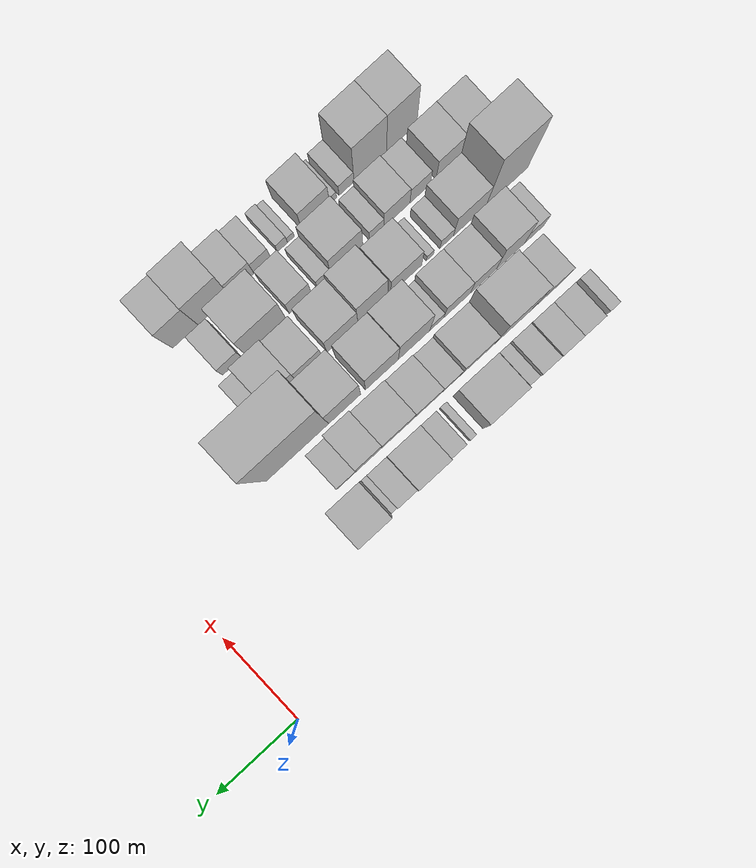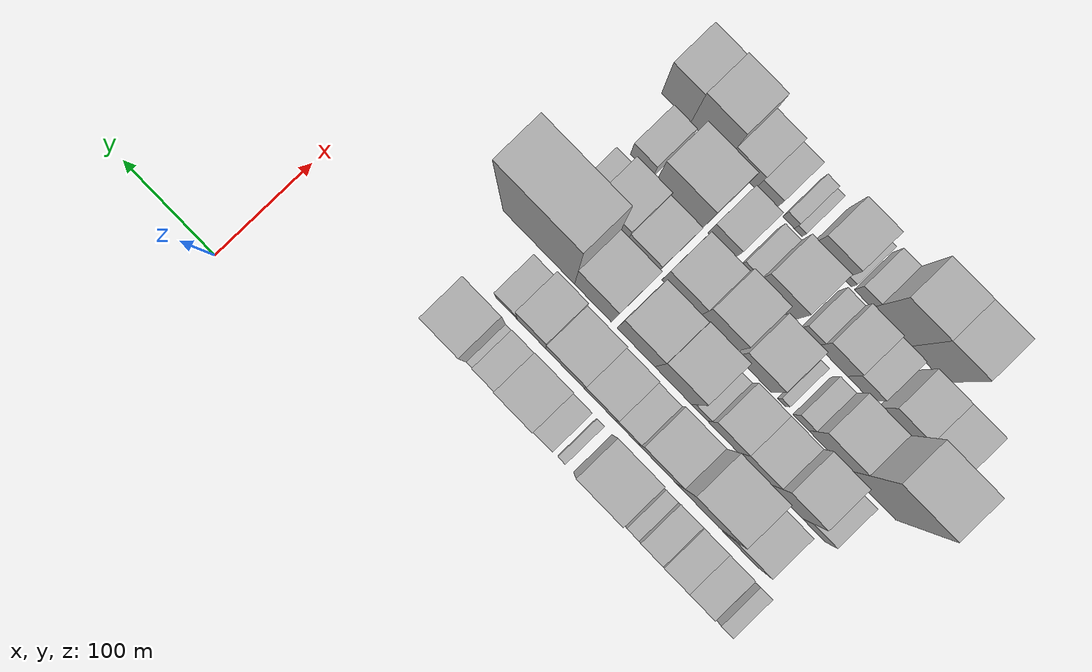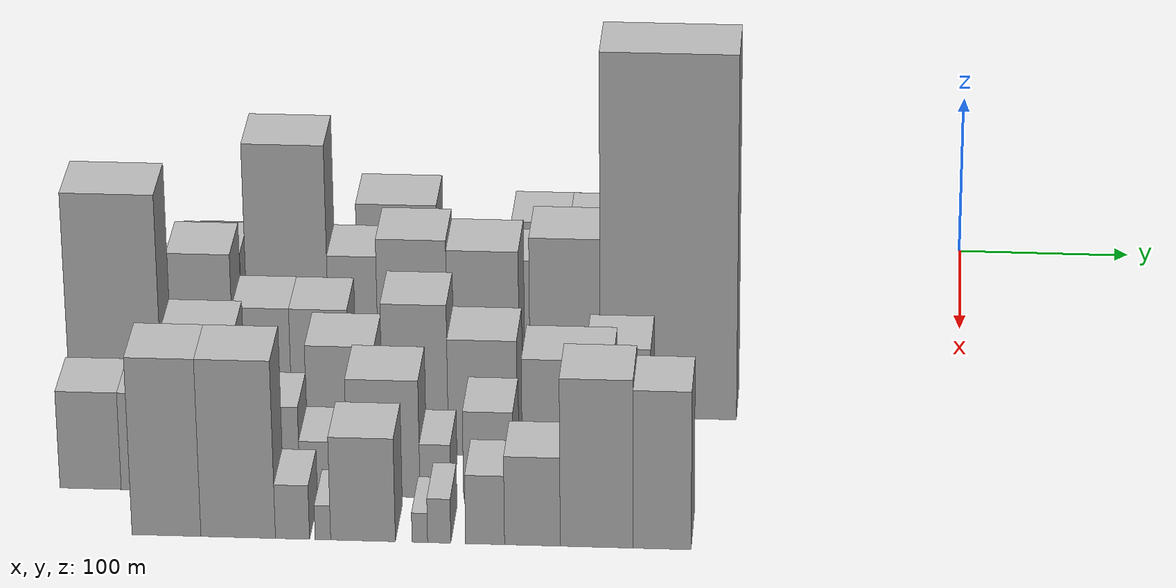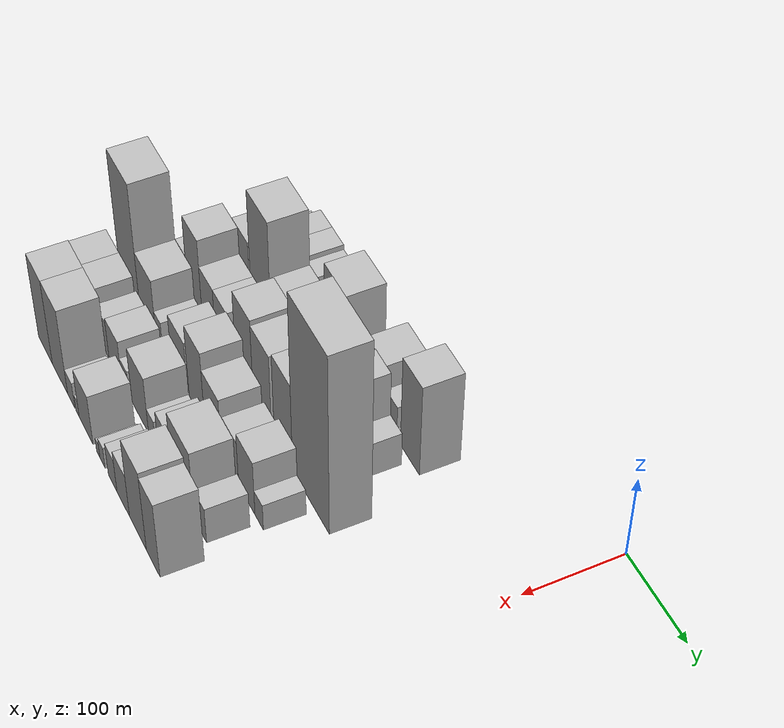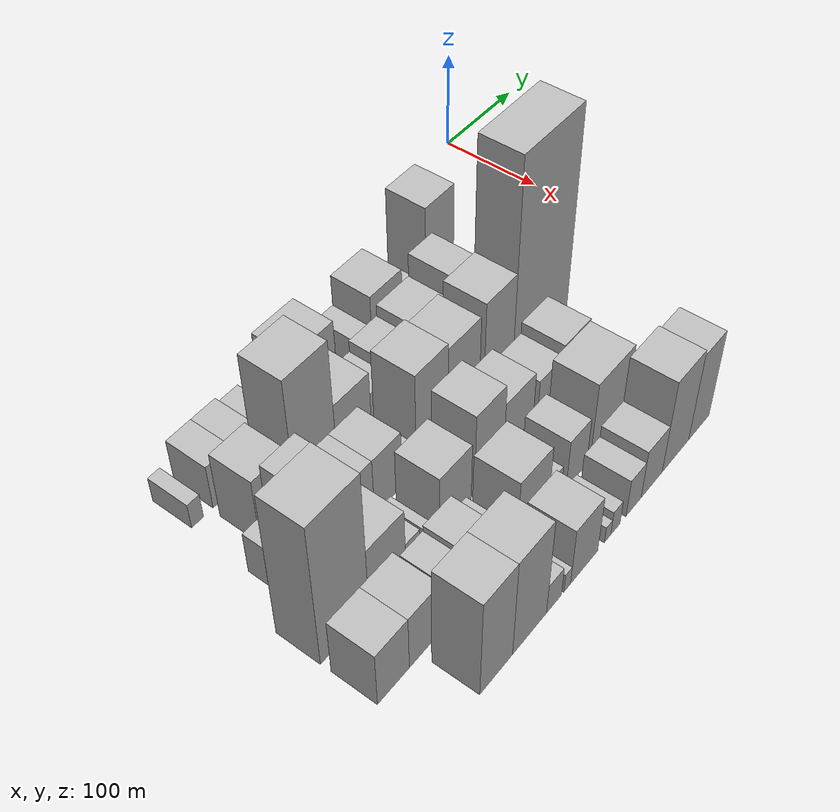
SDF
<sdf version="1.6">
 <world name="default">
  <model name="building_9">
   <static>1</static>
   <pose>100.0000 -460.1134 0 0.000000 0.000000 0.000000</pose>
   <link name="link">
    <pose>0 0 13.50 0 0 0</pose>
    <collision name="collision"><geometry><box><size>40.0000 12.3579 27.0000</size></box></geometry></collision>
    <visual name="visual">
     <cast_shadows>0</cast_shadows>
     <geometry><box><size>40.0000 12.3579 27.0000</size></box></geometry>
     <material>
      <script>
       <uri>model://HANNAS_wall/materials/scripts</uri>
       <uri>model://HANNAS_wall/materials/textures</uri>
       <name>vrc/HANNAS_wall</name>
      </script>
     </material>
    </visual>
   </link>
  </model>
  <model name="building_10">
   <static>1</static>
   <pose>100.0000 -431.0310 0 0.000000 0.000000 0.000000</pose>
   <link name="link">
    <pose>0 0 24.00 0 0 0</pose>
    <collision name="collision"><geometry><box><size>40.0000 25.8069 48.0000</size></box></geometry></collision>
    <visual name="visual">
     <cast_shadows>0</cast_shadows>
     <geometry><box><size>40.0000 25.8069 48.0000</size></box></geometry>
     <material>
      <script>
       <uri>model://HANNAS_wall/materials/scripts</uri>
       <uri>model://HANNAS_wall/materials/textures</uri>
       <name>vrc/HANNAS_wall</name>
      </script>
     </material>
    </visual>
   </link>
  </model>
  <model name="building_11">
   <static>1</static>
   <pose>100.0000 -405.2154 0 0.000000 0.000000 0.000000</pose>
   <link name="link">
    <pose>0 0 24.00 0 0 0</pose>
    <collision name="collision"><geometry><box><size>40.0000 25.8243 48.0000</size></box></geometry></collision>
    <visual name="visual">
     <cast_shadows>0</cast_shadows>
     <geometry><box><size>40.0000 25.8243 48.0000</size></box></geometry>
     <material>
      <script>
       <uri>model://HANNAS_wall/materials/scripts</uri>
       <uri>model://HANNAS_wall/materials/textures</uri>
       <name>vrc/HANNAS_wall</name>
      </script>
     </material>
    </visual>
   </link>
  </model>
  <model name="building_12">
   <static>1</static>
   <pose>100.0000 -380.7069 0 0.000000 0.000000 0.000000</pose>
   <link name="link">
    <pose>0 0 21.00 0 0 0</pose>
    <collision name="collision"><geometry><box><size>40.0000 23.1926 42.0000</size></box></geometry></collision>
    <visual name="visual">
     <cast_shadows>0</cast_shadows>
     <geometry><box><size>40.0000 23.1926 42.0000</size></box></geometry>
     <material>
      <script>
       <uri>model://HANNAS_wall/materials/scripts</uri>
       <uri>model://HANNAS_wall/materials/textures</uri>
       <name>vrc/HANNAS_wall</name>
      </script>
     </material>
    </visual>
   </link>
  </model>
  <model name="building_13">
   <static>1</static>
   <pose>100.0000 -362.7196 0 0.000000 0.000000 0.000000</pose>
   <link name="link">
    <pose>0 0 13.50 0 0 0</pose>
    <collision name="collision"><geometry><box><size>40.0000 12.7820 27.0000</size></box></geometry></collision>
    <visual name="visual">
     <cast_shadows>0</cast_shadows>
     <geometry><box><size>40.0000 12.7820 27.0000</size></box></geometry>
     <material>
      <script>
       <uri>model://HANNAS_wall/materials/scripts</uri>
       <uri>model://HANNAS_wall/materials/textures</uri>
       <name>vrc/HANNAS_wall</name>
      </script>
     </material>
    </visual>
   </link>
  </model>
  <model name="building_14">
   <static>1</static>
   <pose>100.0000 -325.0952 0 0.000000 0.000000 0.000000</pose>
   <link name="link">
    <pose>0 0 40.50 0 0 0</pose>
    <collision name="collision"><geometry><box><size>40.0000 46.4668 81.0000</size></box></geometry></collision>
    <visual name="visual">
     <cast_shadows>0</cast_shadows>
     <geometry><box><size>40.0000 46.4668 81.0000</size></box></geometry>
     <material>
      <script>
       <uri>model://HANNAS_wall/materials/scripts</uri>
       <uri>model://HANNAS_wall/materials/textures</uri>
       <name>vrc/HANNAS_wall</name>
      </script>
     </material>
    </visual>
   </link>
  </model>
  <model name="building_15">
   <static>1</static>
   <pose>100.0000 -288.9566 0 0.000000 0.000000 0.000000</pose>
   <link name="link">
    <pose>0 0 9.00 0 0 0</pose>
    <collision name="collision"><geometry><box><size>40.0000 7.8104 18.0000</size></box></geometry></collision>
    <visual name="visual">
     <cast_shadows>0</cast_shadows>
     <geometry><box><size>40.0000 7.8104 18.0000</size></box></geometry>
     <material>
      <script>
       <uri>model://HANNAS_wall/materials/scripts</uri>
       <uri>model://HANNAS_wall/materials/textures</uri>
       <name>vrc/HANNAS_wall</name>
      </script>
     </material>
    </visual>
   </link>
  </model>
  <model name="building_16">
   <static>1</static>
   <pose>100.0000 -268.9484 0 0.000000 0.000000 0.000000</pose>
   <link name="link">
    <pose>0 0 19.50 0 0 0</pose>
    <collision name="collision"><geometry><box><size>40.0000 20.2061 39.0000</size></box></geometry></collision>
    <visual name="visual">
     <cast_shadows>0</cast_shadows>
     <geometry><box><size>40.0000 20.2061 39.0000</size></box></geometry>
     <material>
      <script>
       <uri>model://HANNAS_wall/materials/scripts</uri>
       <uri>model://HANNAS_wall/materials/textures</uri>
       <name>vrc/HANNAS_wall</name>
      </script>
     </material>
    </visual>
   </link>
  </model>
  <model name="building_17">
   <static>1</static>
   <pose>100.0000 -239.3086 0 0.000000 0.000000 0.000000</pose>
   <link name="link">
    <pose>0 0 36.00 0 0 0</pose>
    <collision name="collision"><geometry><box><size>40.0000 39.0734 72.0000</size></box></geometry></collision>
    <visual name="visual">
     <cast_shadows>0</cast_shadows>
     <geometry><box><size>40.0000 39.0734 72.0000</size></box></geometry>
     <material>
      <script>
       <uri>model://HANNAS_wall/materials/scripts</uri>
       <uri>model://HANNAS_wall/materials/textures</uri>
       <name>vrc/HANNAS_wall</name>
      </script>
     </material>
    </visual>
   </link>
  </model>
  <model name="building_18">
   <static>1</static>
   <pose>100.0000 -207.8517 0 0.000000 0.000000 0.000000</pose>
   <link name="link">
    <pose>0 0 21.00 0 0 0</pose>
    <collision name="collision"><geometry><box><size>40.0000 23.8405 42.0000</size></box></geometry></collision>
    <visual name="visual">
     <cast_shadows>0</cast_shadows>
     <geometry><box><size>40.0000 23.8405 42.0000</size></box></geometry>
     <material>
      <script>
       <uri>model://HANNAS_wall/materials/scripts</uri>
       <uri>model://HANNAS_wall/materials/textures</uri>
       <name>vrc/HANNAS_wall</name>
      </script>
     </material>
    </visual>
   </link>
  </model>
  <model name="building_19">
   <static>1</static>
   <pose>100.0000 -192.2362 0 0.000000 0.000000 0.000000</pose>
   <link name="link">
    <pose>0 0 7.50 0 0 0</pose>
    <collision name="collision"><geometry><box><size>40.0000 7.3903 15.0000</size></box></geometry></collision>
    <visual name="visual">
     <cast_shadows>0</cast_shadows>
     <geometry><box><size>40.0000 7.3903 15.0000</size></box></geometry>
     <material>
      <script>
       <uri>model://HANNAS_wall/materials/scripts</uri>
       <uri>model://HANNAS_wall/materials/textures</uri>
       <name>vrc/HANNAS_wall</name>
      </script>
     </material>
    </visual>
   </link>
  </model>
  <model name="building_20">
   <static>1</static>
   <pose>100.0000 -169.7350 0 0.000000 0.000000 0.000000</pose>
   <link name="link">
    <pose>0 0 57.00 0 0 0</pose>
    <collision name="collision"><geometry><box><size>40.0000 37.6122 114.0000</size></box></geometry></collision>
    <visual name="visual">
     <cast_shadows>0</cast_shadows>
     <geometry><box><size>40.0000 37.6122 114.0000</size></box></geometry>
     <material>
      <script>
       <uri>model://HANNAS_wall/materials/scripts</uri>
       <uri>model://HANNAS_wall/materials/textures</uri>
       <name>vrc/HANNAS_wall</name>
      </script>
     </material>
    </visual>
   </link>
  </model>
  <model name="building_70">
   <static>1</static>
   <pose>149.0000 -427.7737 0 0.000000 0.000000 0.000000</pose>
   <link name="link">
    <pose>0 0 36.00 0 0 0</pose>
    <collision name="collision"><geometry><box><size>40.0000 36.5717 72.0000</size></box></geometry></collision>
    <visual name="visual">
     <cast_shadows>0</cast_shadows>
     <geometry><box><size>40.0000 36.5717 72.0000</size></box></geometry>
     <material>
      <script>
       <uri>model://HANNAS_wall/materials/scripts</uri>
       <uri>model://HANNAS_wall/materials/textures</uri>
       <name>vrc/HANNAS_wall</name>
      </script>
     </material>
    </visual>
   </link>
  </model>
  <model name="building_71">
   <static>1</static>
   <pose>149.0000 -383.2356 0 0.000000 0.000000 0.000000</pose>
   <link name="link">
    <pose>0 0 70.50 0 0 0</pose>
    <collision name="collision"><geometry><box><size>40.0000 46.5044 141.0000</size></box></geometry></collision>
    <visual name="visual">
     <cast_shadows>0</cast_shadows>
     <geometry><box><size>40.0000 46.5044 141.0000</size></box></geometry>
     <material>
      <script>
       <uri>model://HANNAS_wall/materials/scripts</uri>
       <uri>model://HANNAS_wall/materials/textures</uri>
       <name>vrc/HANNAS_wall</name>
      </script>
     </material>
    </visual>
   </link>
  </model>
  <model name="building_72">
   <static>1</static>
   <pose>149.0000 -339.8218 0 0.000000 0.000000 0.000000</pose>
   <link name="link">
    <pose>0 0 36.00 0 0 0</pose>
    <collision name="collision"><geometry><box><size>40.0000 40.3234 72.0000</size></box></geometry></collision>
    <visual name="visual">
     <cast_shadows>0</cast_shadows>
     <geometry><box><size>40.0000 40.3234 72.0000</size></box></geometry>
     <material>
      <script>
       <uri>model://HANNAS_wall/materials/scripts</uri>
       <uri>model://HANNAS_wall/materials/textures</uri>
       <name>vrc/HANNAS_wall</name>
      </script>
     </material>
    </visual>
   </link>
  </model>
  <model name="building_73">
   <static>1</static>
   <pose>149.0000 -307.6276 0 0.000000 0.000000 0.000000</pose>
   <link name="link">
    <pose>0 0 24.00 0 0 0</pose>
    <collision name="collision"><geometry><box><size>40.0000 24.0650 48.0000</size></box></geometry></collision>
    <visual name="visual">
     <cast_shadows>0</cast_shadows>
     <geometry><box><size>40.0000 24.0650 48.0000</size></box></geometry>
     <material>
      <script>
       <uri>model://HANNAS_wall/materials/scripts</uri>
       <uri>model://HANNAS_wall/materials/textures</uri>
       <name>vrc/HANNAS_wall</name>
      </script>
     </material>
    </visual>
   </link>
  </model>
  <model name="building_74">
   <static>1</static>
   <pose>149.0000 -278.8777 0 0.000000 0.000000 0.000000</pose>
   <link name="link">
    <pose>0 0 30.00 0 0 0</pose>
    <collision name="collision"><geometry><box><size>40.0000 33.4348 60.0000</size></box></geometry></collision>
    <visual name="visual">
     <cast_shadows>0</cast_shadows>
     <geometry><box><size>40.0000 33.4348 60.0000</size></box></geometry>
     <material>
      <script>
       <uri>model://HANNAS_wall/materials/scripts</uri>
       <uri>model://HANNAS_wall/materials/textures</uri>
       <name>vrc/HANNAS_wall</name>
      </script>
     </material>
    </visual>
   </link>
  </model>
  <model name="building_75">
   <static>1</static>
   <pose>149.0000 -242.0687 0 0.000000 0.000000 0.000000</pose>
   <link name="link">
    <pose>0 0 36.00 0 0 0</pose>
    <collision name="collision"><geometry><box><size>40.0000 40.1833 72.0000</size></box></geometry></collision>
    <visual name="visual">
     <cast_shadows>0</cast_shadows>
     <geometry><box><size>40.0000 40.1833 72.0000</size></box></geometry>
     <material>
      <script>
       <uri>model://HANNAS_wall/materials/scripts</uri>
       <uri>model://HANNAS_wall/materials/textures</uri>
       <name>vrc/HANNAS_wall</name>
      </script>
     </material>
    </visual>
   </link>
  </model>
  <model name="building_76">
   <static>1</static>
   <pose>149.0000 -206.7712 0 0.000000 0.000000 0.000000</pose>
   <link name="link">
    <pose>0 0 48.00 0 0 0</pose>
    <collision name="collision"><geometry><box><size>40.0000 30.4117 96.0000</size></box></geometry></collision>
    <visual name="visual">
     <cast_shadows>0</cast_shadows>
     <geometry><box><size>40.0000 30.4117 96.0000</size></box></geometry>
     <material>
      <script>
       <uri>model://HANNAS_wall/materials/scripts</uri>
       <uri>model://HANNAS_wall/materials/textures</uri>
       <name>vrc/HANNAS_wall</name>
      </script>
     </material>
    </visual>
   </link>
  </model>
  <model name="building_77">
   <static>1</static>
   <pose>149.0000 -179.8009 0 0.000000 0.000000 0.000000</pose>
   <link name="link">
    <pose>0 0 21.00 0 0 0</pose>
    <collision name="collision"><geometry><box><size>40.0000 23.5288 42.0000</size></box></geometry></collision>
    <visual name="visual">
     <cast_shadows>0</cast_shadows>
     <geometry><box><size>40.0000 23.5288 42.0000</size></box></geometry>
     <material>
      <script>
       <uri>model://HANNAS_wall/materials/scripts</uri>
       <uri>model://HANNAS_wall/materials/textures</uri>
       <name>vrc/HANNAS_wall</name>
      </script>
     </material>
    </visual>
   </link>
  </model>
  <model name="building_126">
   <static>1</static>
   <pose>198.0000 -456.2921 0 0.000000 0.000000 0.000000</pose>
   <link name="link">
    <pose>0 0 22.50 0 0 0</pose>
    <collision name="collision"><geometry><box><size>40.0000 24.3180 45.0000</size></box></geometry></collision>
    <visual name="visual">
     <cast_shadows>0</cast_shadows>
     <geometry><box><size>40.0000 24.3180 45.0000</size></box></geometry>
     <material>
      <script>
       <uri>model://HANNAS_wall/materials/scripts</uri>
       <uri>model://HANNAS_wall/materials/textures</uri>
       <name>vrc/HANNAS_wall</name>
      </script>
     </material>
    </visual>
   </link>
  </model>
  <model name="building_127">
   <static>1</static>
   <pose>198.0000 -426.2856 0 0.000000 0.000000 0.000000</pose>
   <link name="link">
    <pose>0 0 48.00 0 0 0</pose>
    <collision name="collision"><geometry><box><size>40.0000 35.6952 96.0000</size></box></geometry></collision>
    <visual name="visual">
     <cast_shadows>0</cast_shadows>
     <geometry><box><size>40.0000 35.6952 96.0000</size></box></geometry>
     <material>
      <script>
       <uri>model://HANNAS_wall/materials/scripts</uri>
       <uri>model://HANNAS_wall/materials/textures</uri>
       <name>vrc/HANNAS_wall</name>
      </script>
     </material>
    </visual>
   </link>
  </model>
  <model name="building_128">
   <static>1</static>
   <pose>198.0000 -392.3809 0 0.000000 0.000000 0.000000</pose>
   <link name="link">
    <pose>0 0 31.50 0 0 0</pose>
    <collision name="collision"><geometry><box><size>40.0000 32.1142 63.0000</size></box></geometry></collision>
    <visual name="visual">
     <cast_shadows>0</cast_shadows>
     <geometry><box><size>40.0000 32.1142 63.0000</size></box></geometry>
     <material>
      <script>
       <uri>model://HANNAS_wall/materials/scripts</uri>
       <uri>model://HANNAS_wall/materials/textures</uri>
       <name>vrc/HANNAS_wall</name>
      </script>
     </material>
    </visual>
   </link>
  </model>
  <model name="building_129">
   <static>1</static>
   <pose>198.0000 -360.0443 0 0.000000 0.000000 0.000000</pose>
   <link name="link">
    <pose>0 0 31.50 0 0 0</pose>
    <collision name="collision"><geometry><box><size>40.0000 32.5588 63.0000</size></box></geometry></collision>
    <visual name="visual">
     <cast_shadows>0</cast_shadows>
     <geometry><box><size>40.0000 32.5588 63.0000</size></box></geometry>
     <material>
      <script>
       <uri>model://HANNAS_wall/materials/scripts</uri>
       <uri>model://HANNAS_wall/materials/textures</uri>
       <name>vrc/HANNAS_wall</name>
      </script>
     </material>
    </visual>
   </link>
  </model>
  <model name="building_130">
   <static>1</static>
   <pose>198.0000 -335.2048 0 0.000000 0.000000 0.000000</pose>
   <link name="link">
    <pose>0 0 16.50 0 0 0</pose>
    <collision name="collision"><geometry><box><size>40.0000 17.1201 33.0000</size></box></geometry></collision>
    <visual name="visual">
     <cast_shadows>0</cast_shadows>
     <geometry><box><size>40.0000 17.1201 33.0000</size></box></geometry>
     <material>
      <script>
       <uri>model://HANNAS_wall/materials/scripts</uri>
       <uri>model://HANNAS_wall/materials/textures</uri>
       <name>vrc/HANNAS_wall</name>
      </script>
     </material>
    </visual>
   </link>
  </model>
  <model name="building_131">
   <static>1</static>
   <pose>198.0000 -307.1525 0 0.000000 0.000000 0.000000</pose>
   <link name="link">
    <pose>0 0 54.00 0 0 0</pose>
    <collision name="collision"><geometry><box><size>40.0000 38.9846 108.0000</size></box></geometry></collision>
    <visual name="visual">
     <cast_shadows>0</cast_shadows>
     <geometry><box><size>40.0000 38.9846 108.0000</size></box></geometry>
     <material>
      <script>
       <uri>model://HANNAS_wall/materials/scripts</uri>
       <uri>model://HANNAS_wall/materials/textures</uri>
       <name>vrc/HANNAS_wall</name>
      </script>
     </material>
    </visual>
   </link>
  </model>
  <model name="building_132">
   <static>1</static>
   <pose>198.0000 -267.5398 0 0.000000 0.000000 0.000000</pose>
   <link name="link">
    <pose>0 0 51.00 0 0 0</pose>
    <collision name="collision"><geometry><box><size>40.0000 40.2407 102.0000</size></box></geometry></collision>
    <visual name="visual">
     <cast_shadows>0</cast_shadows>
     <geometry><box><size>40.0000 40.2407 102.0000</size></box></geometry>
     <material>
      <script>
       <uri>model://HANNAS_wall/materials/scripts</uri>
       <uri>model://HANNAS_wall/materials/textures</uri>
       <name>vrc/HANNAS_wall</name>
      </script>
     </material>
    </visual>
   </link>
  </model>
  <model name="building_133">
   <static>1</static>
   <pose>198.0000 -221.7228 0 0.000000 0.000000 0.000000</pose>
   <link name="link">
    <pose>0 0 55.50 0 0 0</pose>
    <collision name="collision"><geometry><box><size>40.0000 39.3933 111.0000</size></box></geometry></collision>
    <visual name="visual">
     <cast_shadows>0</cast_shadows>
     <geometry><box><size>40.0000 39.3933 111.0000</size></box></geometry>
     <material>
      <script>
       <uri>model://HANNAS_wall/materials/scripts</uri>
       <uri>model://HANNAS_wall/materials/textures</uri>
       <name>vrc/HANNAS_wall</name>
      </script>
     </material>
    </visual>
   </link>
  </model>
  <model name="building_134">
   <static>1</static>
   <pose>198.0000 -163.7199 0 0.000000 0.000000 0.000000</pose>
   <link name="link">
    <pose>0 0 112.50 0 0 0</pose>
    <collision name="collision"><geometry><box><size>40.0000 76.6126 225.0000</size></box></geometry></collision>
    <visual name="visual">
     <cast_shadows>0</cast_shadows>
     <geometry><box><size>40.0000 76.6126 225.0000</size></box></geometry>
     <material>
      <script>
       <uri>model://HANNAS_wall/materials/scripts</uri>
       <uri>model://HANNAS_wall/materials/textures</uri>
       <name>vrc/HANNAS_wall</name>
      </script>
     </material>
    </visual>
   </link>
  </model>
  <model name="building_168">
   <static>1</static>
   <pose>247.0000 -467.6904 0 0.000000 0.000000 0.000000</pose>
   <link name="link">
    <pose>0 0 78.00 0 0 0</pose>
    <collision name="collision"><geometry><box><size>40.0000 51.4408 156.0000</size></box></geometry></collision>
    <visual name="visual">
     <cast_shadows>0</cast_shadows>
     <geometry><box><size>40.0000 51.4408 156.0000</size></box></geometry>
     <material>
      <script>
       <uri>model://HANNAS_wall/materials/scripts</uri>
       <uri>model://HANNAS_wall/materials/textures</uri>
       <name>vrc/HANNAS_wall</name>
      </script>
     </material>
    </visual>
   </link>
  </model>
  <model name="building_169">
   <static>1</static>
   <pose>247.0000 -421.5922 0 0.000000 0.000000 0.000000</pose>
   <link name="link">
    <pose>0 0 36.00 0 0 0</pose>
    <collision name="collision"><geometry><box><size>40.0000 40.7557 72.0000</size></box></geometry></collision>
    <visual name="visual">
     <cast_shadows>0</cast_shadows>
     <geometry><box><size>40.0000 40.7557 72.0000</size></box></geometry>
     <material>
      <script>
       <uri>model://HANNAS_wall/materials/scripts</uri>
       <uri>model://HANNAS_wall/materials/textures</uri>
       <name>vrc/HANNAS_wall</name>
      </script>
     </material>
    </visual>
   </link>
  </model>
  <model name="building_170">
   <static>1</static>
   <pose>247.0000 -392.9305 0 0.000000 0.000000 0.000000</pose>
   <link name="link">
    <pose>0 0 16.50 0 0 0</pose>
    <collision name="collision"><geometry><box><size>40.0000 16.5677 33.0000</size></box></geometry></collision>
    <visual name="visual">
     <cast_shadows>0</cast_shadows>
     <geometry><box><size>40.0000 16.5677 33.0000</size></box></geometry>
     <material>
      <script>
       <uri>model://HANNAS_wall/materials/scripts</uri>
       <uri>model://HANNAS_wall/materials/textures</uri>
       <name>vrc/HANNAS_wall</name>
      </script>
     </material>
    </visual>
   </link>
  </model>
  <model name="building_171">
   <static>1</static>
   <pose>247.0000 -372.3121 0 0.000000 0.000000 0.000000</pose>
   <link name="link">
    <pose>0 0 10.50 0 0 0</pose>
    <collision name="collision"><geometry><box><size>40.0000 8.6689 21.0000</size></box></geometry></collision>
    <visual name="visual">
     <cast_shadows>0</cast_shadows>
     <geometry><box><size>40.0000 8.6689 21.0000</size></box></geometry>
     <material>
      <script>
       <uri>model://HANNAS_wall/materials/scripts</uri>
       <uri>model://HANNAS_wall/materials/textures</uri>
       <name>vrc/HANNAS_wall</name>
      </script>
     </material>
    </visual>
   </link>
  </model>
  <model name="building_172">
   <static>1</static>
   <pose>247.0000 -342.8455 0 0.000000 0.000000 0.000000</pose>
   <link name="link">
    <pose>0 0 33.00 0 0 0</pose>
    <collision name="collision"><geometry><box><size>40.0000 38.2643 66.0000</size></box></geometry></collision>
    <visual name="visual">
     <cast_shadows>0</cast_shadows>
     <geometry><box><size>40.0000 38.2643 66.0000</size></box></geometry>
     <material>
      <script>
       <uri>model://HANNAS_wall/materials/scripts</uri>
       <uri>model://HANNAS_wall/materials/textures</uri>
       <name>vrc/HANNAS_wall</name>
      </script>
     </material>
    </visual>
   </link>
  </model>
  <model name="building_173">
   <static>1</static>
   <pose>247.0000 -301.5321 0 0.000000 0.000000 0.000000</pose>
   <link name="link">
    <pose>0 0 46.50 0 0 0</pose>
    <collision name="collision"><geometry><box><size>40.0000 36.3626 93.0000</size></box></geometry></collision>
    <visual name="visual">
     <cast_shadows>0</cast_shadows>
     <geometry><box><size>40.0000 36.3626 93.0000</size></box></geometry>
     <material>
      <script>
       <uri>model://HANNAS_wall/materials/scripts</uri>
       <uri>model://HANNAS_wall/materials/textures</uri>
       <name>vrc/HANNAS_wall</name>
      </script>
     </material>
    </visual>
   </link>
  </model>
  <model name="building_174">
   <static>1</static>
   <pose>247.0000 -264.1914 0 0.000000 0.000000 0.000000</pose>
   <link name="link">
    <pose>0 0 36.00 0 0 0</pose>
    <collision name="collision"><geometry><box><size>40.0000 38.3188 72.0000</size></box></geometry></collision>
    <visual name="visual">
     <cast_shadows>0</cast_shadows>
     <geometry><box><size>40.0000 38.3188 72.0000</size></box></geometry>
     <material>
      <script>
       <uri>model://HANNAS_wall/materials/scripts</uri>
       <uri>model://HANNAS_wall/materials/textures</uri>
       <name>vrc/HANNAS_wall</name>
      </script>
     </material>
    </visual>
   </link>
  </model>
  <model name="building_175">
   <static>1</static>
   <pose>247.0000 -222.9143 0 0.000000 0.000000 0.000000</pose>
   <link name="link">
    <pose>0 0 28.50 0 0 0</pose>
    <collision name="collision"><geometry><box><size>40.0000 32.2353 57.0000</size></box></geometry></collision>
    <visual name="visual">
     <cast_shadows>0</cast_shadows>
     <geometry><box><size>40.0000 32.2353 57.0000</size></box></geometry>
     <material>
      <script>
       <uri>model://HANNAS_wall/materials/scripts</uri>
       <uri>model://HANNAS_wall/materials/textures</uri>
       <name>vrc/HANNAS_wall</name>
      </script>
     </material>
    </visual>
   </link>
  </model>
  <model name="building_176">
   <static>1</static>
   <pose>247.0000 -189.0116 0 0.000000 0.000000 0.000000</pose>
   <link name="link">
    <pose>0 0 34.50 0 0 0</pose>
    <collision name="collision"><geometry><box><size>40.0000 35.5702 69.0000</size></box></geometry></collision>
    <visual name="visual">
     <cast_shadows>0</cast_shadows>
     <geometry><box><size>40.0000 35.5702 69.0000</size></box></geometry>
     <material>
      <script>
       <uri>model://HANNAS_wall/materials/scripts</uri>
       <uri>model://HANNAS_wall/materials/textures</uri>
       <name>vrc/HANNAS_wall</name>
      </script>
     </material>
    </visual>
   </link>
  </model>
  <model name="building_177">
   <static>1</static>
   <pose>247.0000 -162.2184 0 0.000000 0.000000 0.000000</pose>
   <link name="link">
    <pose>0 0 16.50 0 0 0</pose>
    <collision name="collision"><geometry><box><size>40.0000 18.0161 33.0000</size></box></geometry></collision>
    <visual name="visual">
     <cast_shadows>0</cast_shadows>
     <geometry><box><size>40.0000 18.0161 33.0000</size></box></geometry>
     <material>
      <script>
       <uri>model://HANNAS_wall/materials/scripts</uri>
       <uri>model://HANNAS_wall/materials/textures</uri>
       <name>vrc/HANNAS_wall</name>
      </script>
     </material>
    </visual>
   </link>
  </model>
  <model name="building_215">
   <static>1</static>
   <pose>296.0000 -476.1179 0 0.000000 0.000000 0.000000</pose>
   <link name="link">
    <pose>0 0 30.00 0 0 0</pose>
    <collision name="collision"><geometry><box><size>40.0000 33.7536 60.0000</size></box></geometry></collision>
    <visual name="visual">
     <cast_shadows>0</cast_shadows>
     <geometry><box><size>40.0000 33.7536 60.0000</size></box></geometry>
     <material>
      <script>
       <uri>model://HANNAS_wall/materials/scripts</uri>
       <uri>model://HANNAS_wall/materials/textures</uri>
       <name>vrc/HANNAS_wall</name>
      </script>
     </material>
    </visual>
   </link>
  </model>
  <model name="building_216">
   <static>1</static>
   <pose>296.0000 -442.1155 0 0.000000 0.000000 0.000000</pose>
   <link name="link">
    <pose>0 0 30.00 0 0 0</pose>
    <collision name="collision"><geometry><box><size>40.0000 34.2513 60.0000</size></box></geometry></collision>
    <visual name="visual">
     <cast_shadows>0</cast_shadows>
     <geometry><box><size>40.0000 34.2513 60.0000</size></box></geometry>
     <material>
      <script>
       <uri>model://HANNAS_wall/materials/scripts</uri>
       <uri>model://HANNAS_wall/materials/textures</uri>
       <name>vrc/HANNAS_wall</name>
      </script>
     </material>
    </visual>
   </link>
  </model>
  <model name="building_217">
   <static>1</static>
   <pose>296.0000 -405.3394 0 0.000000 0.000000 0.000000</pose>
   <link name="link">
    <pose>0 0 24.00 0 0 0</pose>
    <collision name="collision"><geometry><box><size>40.0000 25.3008 48.0000</size></box></geometry></collision>
    <visual name="visual">
     <cast_shadows>0</cast_shadows>
     <geometry><box><size>40.0000 25.3008 48.0000</size></box></geometry>
     <material>
      <script>
       <uri>model://HANNAS_wall/materials/scripts</uri>
       <uri>model://HANNAS_wall/materials/textures</uri>
       <name>vrc/HANNAS_wall</name>
      </script>
     </material>
    </visual>
   </link>
  </model>
  <model name="building_218">
   <static>1</static>
   <pose>296.0000 -376.6928 0 0.000000 0.000000 0.000000</pose>
   <link name="link">
    <pose>0 0 27.00 0 0 0</pose>
    <collision name="collision"><geometry><box><size>40.0000 31.9924 54.0000</size></box></geometry></collision>
    <visual name="visual">
     <cast_shadows>0</cast_shadows>
     <geometry><box><size>40.0000 31.9924 54.0000</size></box></geometry>
     <material>
      <script>
       <uri>model://HANNAS_wall/materials/scripts</uri>
       <uri>model://HANNAS_wall/materials/textures</uri>
       <name>vrc/HANNAS_wall</name>
      </script>
     </material>
    </visual>
   </link>
  </model>
  <model name="building_219">
   <static>1</static>
   <pose>296.0000 -351.6279 0 0.000000 0.000000 0.000000</pose>
   <link name="link">
    <pose>0 0 16.50 0 0 0</pose>
    <collision name="collision"><geometry><box><size>40.0000 18.1374 33.0000</size></box></geometry></collision>
    <visual name="visual">
     <cast_shadows>0</cast_shadows>
     <geometry><box><size>40.0000 18.1374 33.0000</size></box></geometry>
     <material>
      <script>
       <uri>model://HANNAS_wall/materials/scripts</uri>
       <uri>model://HANNAS_wall/materials/textures</uri>
       <name>vrc/HANNAS_wall</name>
      </script>
     </material>
    </visual>
   </link>
  </model>
  <model name="building_220">
   <static>1</static>
   <pose>296.0000 -314.6898 0 0.000000 0.000000 0.000000</pose>
   <link name="link">
    <pose>0 0 36.00 0 0 0</pose>
    <collision name="collision"><geometry><box><size>40.0000 39.7388 72.0000</size></box></geometry></collision>
    <visual name="visual">
     <cast_shadows>0</cast_shadows>
     <geometry><box><size>40.0000 39.7388 72.0000</size></box></geometry>
     <material>
      <script>
       <uri>model://HANNAS_wall/materials/scripts</uri>
       <uri>model://HANNAS_wall/materials/textures</uri>
       <name>vrc/HANNAS_wall</name>
      </script>
     </material>
    </visual>
   </link>
  </model>
  <model name="building_221">
   <static>1</static>
   <pose>296.0000 -286.3816 0 0.000000 0.000000 0.000000</pose>
   <link name="link">
    <pose>0 0 16.50 0 0 0</pose>
    <collision name="collision"><geometry><box><size>40.0000 16.8776 33.0000</size></box></geometry></collision>
    <visual name="visual">
     <cast_shadows>0</cast_shadows>
     <geometry><box><size>40.0000 16.8776 33.0000</size></box></geometry>
     <material>
      <script>
       <uri>model://HANNAS_wall/materials/scripts</uri>
       <uri>model://HANNAS_wall/materials/textures</uri>
       <name>vrc/HANNAS_wall</name>
      </script>
     </material>
    </visual>
   </link>
  </model>
  <model name="building_222">
   <static>1</static>
   <pose>296.0000 -257.2634 0 0.000000 0.000000 0.000000</pose>
   <link name="link">
    <pose>0 0 27.00 0 0 0</pose>
    <collision name="collision"><geometry><box><size>40.0000 27.3590 54.0000</size></box></geometry></collision>
    <visual name="visual">
     <cast_shadows>0</cast_shadows>
     <geometry><box><size>40.0000 27.3590 54.0000</size></box></geometry>
     <material>
      <script>
       <uri>model://HANNAS_wall/materials/scripts</uri>
       <uri>model://HANNAS_wall/materials/textures</uri>
       <name>vrc/HANNAS_wall</name>
      </script>
     </material>
    </visual>
   </link>
  </model>
  <model name="building_223">
   <static>1</static>
   <pose>296.0000 -213.7911 0 0.000000 0.000000 0.000000</pose>
   <link name="link">
    <pose>0 0 43.50 0 0 0</pose>
    <collision name="collision"><geometry><box><size>40.0000 49.5855 87.0000</size></box></geometry></collision>
    <visual name="visual">
     <cast_shadows>0</cast_shadows>
     <geometry><box><size>40.0000 49.5855 87.0000</size></box></geometry>
     <material>
      <script>
       <uri>model://HANNAS_wall/materials/scripts</uri>
       <uri>model://HANNAS_wall/materials/textures</uri>
       <name>vrc/HANNAS_wall</name>
      </script>
     </material>
    </visual>
   </link>
  </model>
  <model name="building_224">
   <static>1</static>
   <pose>296.0000 -173.0551 0 0.000000 0.000000 0.000000</pose>
   <link name="link">
    <pose>0 0 22.50 0 0 0</pose>
    <collision name="collision"><geometry><box><size>40.0000 23.8865 45.0000</size></box></geometry></collision>
    <visual name="visual">
     <cast_shadows>0</cast_shadows>
     <geometry><box><size>40.0000 23.8865 45.0000</size></box></geometry>
     <material>
      <script>
       <uri>model://HANNAS_wall/materials/scripts</uri>
       <uri>model://HANNAS_wall/materials/textures</uri>
       <name>vrc/HANNAS_wall</name>
      </script>
     </material>
    </visual>
   </link>
  </model>
  <model name="building_262">
   <static>1</static>
   <pose>345.0000 -427.7395 0 0.000000 0.000000 0.000000</pose>
   <link name="link">
    <pose>0 0 54.00 0 0 0</pose>
    <collision name="collision"><geometry><box><size>40.0000 37.3616 108.0000</size></box></geometry></collision>
    <visual name="visual">
     <cast_shadows>0</cast_shadows>
     <geometry><box><size>40.0000 37.3616 108.0000</size></box></geometry>
     <material>
      <script>
       <uri>model://HANNAS_wall/materials/scripts</uri>
       <uri>model://HANNAS_wall/materials/textures</uri>
       <name>vrc/HANNAS_wall</name>
      </script>
     </material>
    </visual>
   </link>
  </model>
  <model name="building_263">
   <static>1</static>
   <pose>345.0000 -388.8523 0 0.000000 0.000000 0.000000</pose>
   <link name="link">
    <pose>0 0 54.00 0 0 0</pose>
    <collision name="collision"><geometry><box><size>40.0000 40.4130 108.0000</size></box></geometry></collision>
    <visual name="visual">
     <cast_shadows>0</cast_shadows>
     <geometry><box><size>40.0000 40.4130 108.0000</size></box></geometry>
     <material>
      <script>
       <uri>model://HANNAS_wall/materials/scripts</uri>
       <uri>model://HANNAS_wall/materials/textures</uri>
       <name>vrc/HANNAS_wall</name>
      </script>
     </material>
    </visual>
   </link>
  </model>
  <model name="building_264">
   <static>1</static>
   <pose>345.0000 -359.4051 0 0.000000 0.000000 0.000000</pose>
   <link name="link">
    <pose>0 0 16.50 0 0 0</pose>
    <collision name="collision"><geometry><box><size>40.0000 18.4813 33.0000</size></box></geometry></collision>
    <visual name="visual">
     <cast_shadows>0</cast_shadows>
     <geometry><box><size>40.0000 18.4813 33.0000</size></box></geometry>
     <material>
      <script>
       <uri>model://HANNAS_wall/materials/scripts</uri>
       <uri>model://HANNAS_wall/materials/textures</uri>
       <name>vrc/HANNAS_wall</name>
      </script>
     </material>
    </visual>
   </link>
  </model>
  <model name="building_265">
   <static>1</static>
   <pose>345.0000 -342.9609 0 0.000000 0.000000 0.000000</pose>
   <link name="link">
    <pose>0 0 10.50 0 0 0</pose>
    <collision name="collision"><geometry><box><size>40.0000 8.4073 21.0000</size></box></geometry></collision>
    <visual name="visual">
     <cast_shadows>0</cast_shadows>
     <geometry><box><size>40.0000 8.4073 21.0000</size></box></geometry>
     <material>
      <script>
       <uri>model://HANNAS_wall/materials/scripts</uri>
       <uri>model://HANNAS_wall/materials/textures</uri>
       <name>vrc/HANNAS_wall</name>
      </script>
     </material>
    </visual>
   </link>
  </model>
  <model name="building_266">
   <static>1</static>
   <pose>345.0000 -321.2597 0 0.000000 0.000000 0.000000</pose>
   <link name="link">
    <pose>0 0 31.50 0 0 0</pose>
    <collision name="collision"><geometry><box><size>40.0000 34.9950 63.0000</size></box></geometry></collision>
    <visual name="visual">
     <cast_shadows>0</cast_shadows>
     <geometry><box><size>40.0000 34.9950 63.0000</size></box></geometry>
     <material>
      <script>
       <uri>model://HANNAS_wall/materials/scripts</uri>
       <uri>model://HANNAS_wall/materials/textures</uri>
       <name>vrc/HANNAS_wall</name>
      </script>
     </material>
    </visual>
   </link>
  </model>
  <model name="building_267">
   <static>1</static>
   <pose>345.0000 -290.5583 0 0.000000 0.000000 0.000000</pose>
   <link name="link">
    <pose>0 0 9.00 0 0 0</pose>
    <collision name="collision"><geometry><box><size>40.0000 8.4080 18.0000</size></box></geometry></collision>
    <visual name="visual">
     <cast_shadows>0</cast_shadows>
     <geometry><box><size>40.0000 8.4080 18.0000</size></box></geometry>
     <material>
      <script>
       <uri>model://HANNAS_wall/materials/scripts</uri>
       <uri>model://HANNAS_wall/materials/textures</uri>
       <name>vrc/HANNAS_wall</name>
      </script>
     </material>
    </visual>
   </link>
  </model>
  <model name="building_268">
   <static>1</static>
   <pose>345.0000 -280.0906 0 0.000000 0.000000 0.000000</pose>
   <link name="link">
    <pose>0 0 13.50 0 0 0</pose>
    <collision name="collision"><geometry><box><size>40.0000 12.5274 27.0000</size></box></geometry></collision>
    <visual name="visual">
     <cast_shadows>0</cast_shadows>
     <geometry><box><size>40.0000 12.5274 27.0000</size></box></geometry>
     <material>
      <script>
       <uri>model://HANNAS_wall/materials/scripts</uri>
       <uri>model://HANNAS_wall/materials/textures</uri>
       <name>vrc/HANNAS_wall</name>
      </script>
     </material>
    </visual>
   </link>
  </model>
  <model name="building_269">
   <static>1</static>
   <pose>345.0000 -255.3171 0 0.000000 0.000000 0.000000</pose>
   <link name="link">
    <pose>0 0 21.00 0 0 0</pose>
    <collision name="collision"><geometry><box><size>40.0000 21.0197 42.0000</size></box></geometry></collision>
    <visual name="visual">
     <cast_shadows>0</cast_shadows>
     <geometry><box><size>40.0000 21.0197 42.0000</size></box></geometry>
     <material>
      <script>
       <uri>model://HANNAS_wall/materials/scripts</uri>
       <uri>model://HANNAS_wall/materials/textures</uri>
       <name>vrc/HANNAS_wall</name>
      </script>
     </material>
    </visual>
   </link>
  </model>
  <model name="building_270">
   <static>1</static>
   <pose>345.0000 -229.7958 0 0.000000 0.000000 0.000000</pose>
   <link name="link">
    <pose>0 0 27.00 0 0 0</pose>
    <collision name="collision"><geometry><box><size>40.0000 30.0228 54.0000</size></box></geometry></collision>
    <visual name="visual">
     <cast_shadows>0</cast_shadows>
     <geometry><box><size>40.0000 30.0228 54.0000</size></box></geometry>
     <material>
      <script>
       <uri>model://HANNAS_wall/materials/scripts</uri>
       <uri>model://HANNAS_wall/materials/textures</uri>
       <name>vrc/HANNAS_wall</name>
      </script>
     </material>
    </visual>
   </link>
  </model>
  <model name="building_271">
   <static>1</static>
   <pose>345.0000 -195.1857 0 0.000000 0.000000 0.000000</pose>
   <link name="link">
    <pose>0 0 51.00 0 0 0</pose>
    <collision name="collision"><geometry><box><size>40.0000 39.1972 102.0000</size></box></geometry></collision>
    <visual name="visual">
     <cast_shadows>0</cast_shadows>
     <geometry><box><size>40.0000 39.1972 102.0000</size></box></geometry>
     <material>
      <script>
       <uri>model://HANNAS_wall/materials/scripts</uri>
       <uri>model://HANNAS_wall/materials/textures</uri>
       <name>vrc/HANNAS_wall</name>
      </script>
     </material>
    </visual>
   </link>
  </model>
  <model name="building_272">
   <static>1</static>
   <pose>345.0000 -159.9622 0 0.000000 0.000000 0.000000</pose>
   <link name="link">
    <pose>0 0 48.00 0 0 0</pose>
    <collision name="collision"><geometry><box><size>40.0000 31.2498 96.0000</size></box></geometry></collision>
    <visual name="visual">
     <cast_shadows>0</cast_shadows>
     <geometry><box><size>40.0000 31.2498 96.0000</size></box></geometry>
     <material>
      <script>
       <uri>model://HANNAS_wall/materials/scripts</uri>
       <uri>model://HANNAS_wall/materials/textures</uri>
       <name>vrc/HANNAS_wall</name>
      </script>
     </material>
    </visual>
   </link>
  </model>
 </world>
</sdf>
